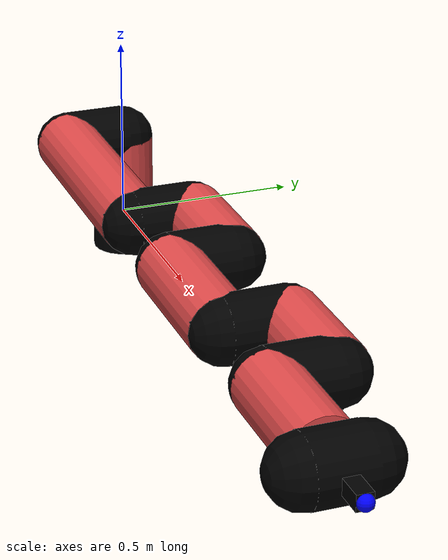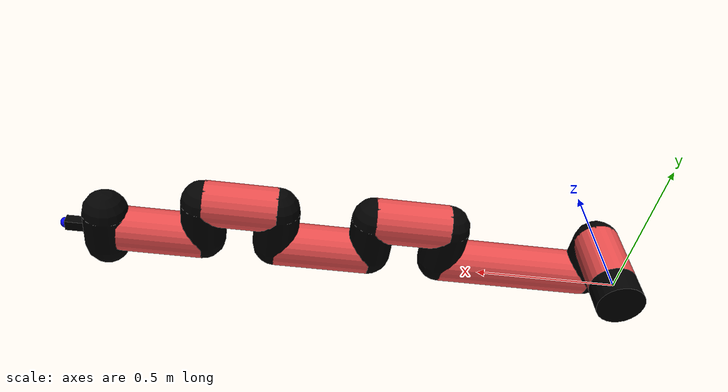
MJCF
<mujoco model="manipulator">
		<compiler angle="degree" coordinate="local" inertiafromgeom="auto" meshdir="meshes/"/>
		<option gravity="0 0 0" integrator="RK4" iterations="30" timestep="0.01"/>

		<default>
		<joint armature="1" limited="true" stiffness="10" damping="15" frictionloss="5.0"/>
		<geom conaffinity="1" condim="3" contype="1" friction=".5 .1 .1" margin="0.002"/>
		<motor ctrllimited="true"/>
		<position ctrllimited="true"/>
		</default>

		<asset>
		<texture builtin="gradient" height="100" rgb1="1.0 1.0 1.0" rgb2="1.0 1.0 1.0" type="skybox" width="100"/>
		<texture builtin="flat" height="32" name="arm_tex" rgb1="0.9 0.3 0.3" type="2d" width="32"/>
		<texture builtin="flat" height="32" name="gripper_tex" rgb1="0.0 0.0 0.0" type="cube" width="32"/>

		<material name="arm_mat" shininess="0.1" specular="0.1" texture="arm_tex"/>
		<material name="gripper_mat" shininess="1" specular="1" texture="gripper_tex"/>
		</asset>

		<worldbody>
		<light cutoff="45" diffuse=".8 .8 .8" dir="0 0.16 -1" directional="false" name="light" pos="0 -2.0 8.0" specular="0.3 0.3 0.3"/>

		<body name="base_link" pos="0 0 -0.1">
		<geom fromto="0 0 0 0 0 0.1" material="arm_mat" name="base_link" rgba="0.0 0.0 0.0 1" size="0.085" type="cylinder"/>
		</body>

		<body name="l1" pos="0 0 0">
<geom fromto="0 0 0 0 0 0.23" material="arm_mat" name="l1" rgba="0.9 0.3 0.3 1" size="0.085" type="cylinder"/>
<geom fromto="0 0 0.23 0 -0.16 0.23" material="arm_mat" name="l1_ex" rgba="0.0 0.0 0.0 1" size="0.085" type="capsule"/>
<joint axis="0 0 1" name="j1" pos="0 0 0" range="-90 90" damping="35.84" frictionloss="8.27"/>

<body name="l2" pos="0 -0.16 0.23">
<geom fromto="0 0 0 0.58 0 0" material="arm_mat" name="l2" rgba="0.9 0.3 0.3 1" size="0.085" type="cylinder"/>
<geom fromto="0.58 0 0 0.58 0.16 0" material="arm_mat" name="l2_ex" rgba="0.0 0.0 0.0 1" size="0.085" type="capsule"/>
<joint axis="0.0 1.0 0.0" name="j2" pos="0 0 0" range="-90 60" damping="35.85" frictionloss="12.13"/>

<body name="l3" pos="0.58 0.16 0">
<geom fromto="0 0 0 0.28 0 0" material="arm_mat" name="l3" rgba="0.9 0.3 0.3 1" size="0.085" type="cylinder"/>
<geom fromto="0.28 0 0 0.28 -0.16 0" material="arm_mat" name="l3_ex" rgba="0.0 0.0 0.0 1" size="0.085" type="capsule"/>
<joint axis="0.0 1.0 0.0" name="j3" pos="0 0 0" range="-30 60" damping="31.39" frictionloss="9.16"/>

<body name="l4" pos="0.28 -0.16 0">
<geom fromto="0 0 0 0.36 0 0" material="arm_mat" name="l4" rgba="0.9 0.3 0.3 1" size="0.085" type="cylinder"/>
<geom fromto="0.36 0 0 0.36 0.16 0" material="arm_mat" name="l4_ex" rgba="0.0 0.0 0.0 1" size="0.085" type="capsule"/>
<joint axis="0.0 1.0 0.0" name="j4" pos="0 0 0" range="-30 60" damping="25.55" frictionloss="9.09"/>

<body name="l5" pos="0.36 0.16 0">
<geom fromto="0 0 0 0.27 0 0" material="arm_mat" name="l5" rgba="0.9 0.3 0.3 1" size="0.085" type="cylinder"/>
<geom fromto="0.27 0 0 0.27 -0.16 0" material="arm_mat" name="l5_ex" rgba="0.0 0.0 0.0 1" size="0.085" type="capsule"/>
<joint axis="0.0 1.0 0.0" name="j5" pos="0 0 0" range="-30 60" damping="23.72" frictionloss="11.23"/>

<body name="l6" pos="0.27 -0.16 0">
<geom fromto="0 0 0 0.31 0 0" material="arm_mat" name="l6" rgba="0.9 0.3 0.3 1" size="0.085" type="cylinder"/>
<joint axis="0.0 1.0 0.0" name="j6" pos="0 0 0" range="-30 60" damping="23.49" frictionloss="10.33"/>

<body name="gripper" pos="0.31 0 0">
<geom fromto="0.05 -0.07 0 0.05 0.07 0" material="gripper_mat" name="gripper" rgba="0.0 0.0 0.0 1" size="0.085" type="capsule"/><joint axis="1 0 0" name="j7" pos="0 0 0" range="-90 90" damping="15" frictionloss="5.0"/><body name="finger" pos="0.1 0 0">
<geom fromto="0 0.0 0 0.1 0.0 0" material="gripper_mat" name="finger" rgba="0.0 0.0 0.0 1" size="0.020 0.06 0.06" type="box"/>
</body>
<site name="current" pos="0.2 0. 0.0" rgba="0. 0. 1.0 1" size="0.02" type="sphere"/>
</body>
</body>
</body>
</body>
</body>
</body>
</body>
</worldbody>
<actuator>
<motor ctrllimited="true" ctrlrange="-1.0 1.0" joint="j1" gear="96.73"/>
<motor ctrllimited="true" ctrlrange="-1.0 1.0" joint="j2" gear="63.31"/>
<motor ctrllimited="true" ctrlrange="-1.0 1.0" joint="j3" gear="86.41"/>
<motor ctrllimited="true" ctrlrange="-1.0 1.0" joint="j4" gear="94.85"/>
<motor ctrllimited="true" ctrlrange="-1.0 1.0" joint="j5" gear="71.73"/>
<motor ctrllimited="true" ctrlrange="-1.0 1.0" joint="j6" gear="92.56"/>
<motor ctrllimited="true" ctrlrange="-1.0 1.0" joint="j7" gear="80"/>
</actuator>
</mujoco>
